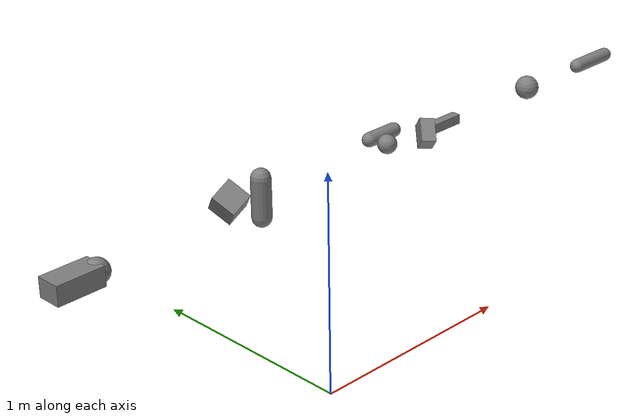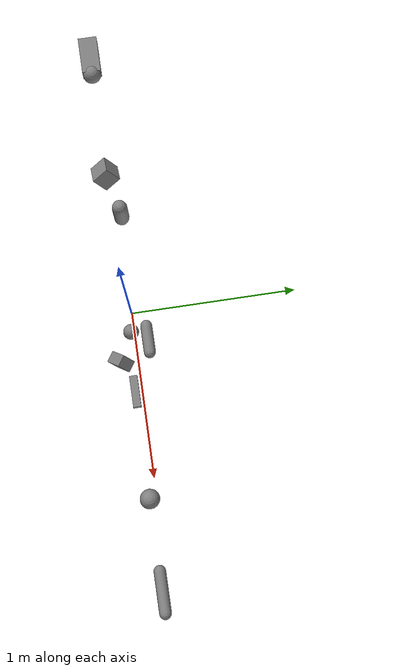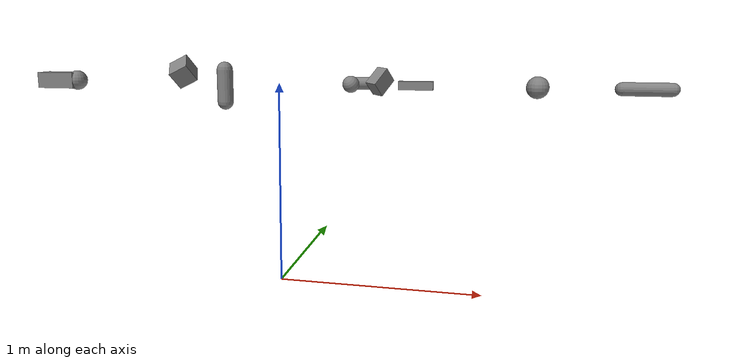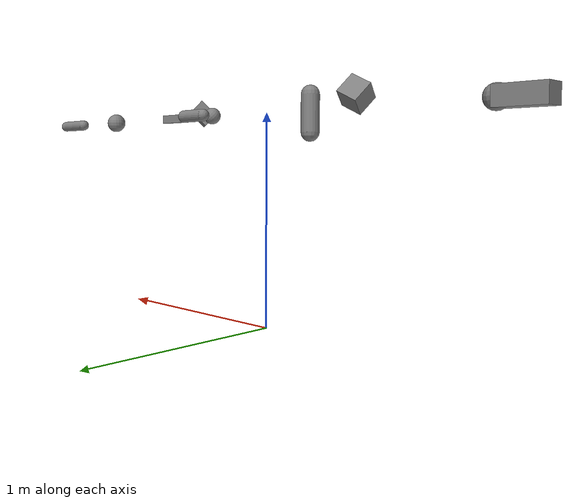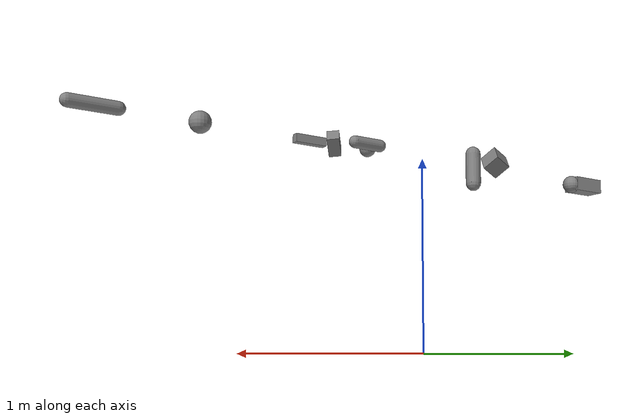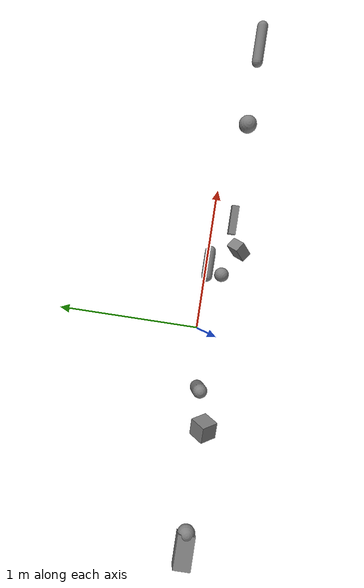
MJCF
<mujoco model="contact_sameframe">
  <option gravity="0 0 -9.81" timestep="0.002"/>

  <worldbody>
    <body name="snap_pos" pos="-1.2 0 1">
      <freejoint name="f_snap_pos"/>
      <inertial pos="5e-7 -4e-7 3e-7" mass="1.3" diaginertia="0.01 0.02 0.03"/>
      <geom name="g_snap_pos_a" type="box" size="0.1 0.05 0.04"/>
      <geom name="g_snap_pos_b" type="sphere" size="0.05" pos="0.1 0 0"/>
    </body>

    <body name="snap_rot" pos="-0.4 0 1">
      <freejoint name="f_snap_rot"/>
      <inertial pos="0.1 0.05 -0.02" quat="1 1e-7 -2e-7 0" mass="0.9" diaginertia="0.02 0.03 0.04"/>
      <geom name="g_snap_rot_a" type="capsule" size="0.04 0.08" pos="0.1 0.05 -0.02" quat="1 1e-7 -2e-7 0"/>
      <geom name="g_snap_rot_b" type="box" size="0.05 0.05 0.05" pos="-0.1 0 0.05" quat="0.9 0.3 -0.2 0.1"/>
    </body>

    <body name="general" pos="0.4 0 1">
      <freejoint name="f_general"/>
      <inertial pos="0.1 -0.05 0.02" quat="0.8 0.2 -0.3 0.4" mass="1.1" diaginertia="0.01 0.02 0.03"/>
      <geom name="g_general_inertia" type="box" size="0.05 0.03 0.04" pos="0.1 -0.05 0.02" quat="0.8 0.2 -0.3 0.4"/>
      <geom name="g_general_inertiarot" type="sphere" size="0.04" pos="-0.05 0.02 0" quat="0.8 0.2 -0.3 0.4"/>
      <geom name="g_general_none" type="capsule" size="0.03 0.07" pos="0 0.1 0" quat="0.5 0.5 0.5 0.5"/>
      <body name="child" pos="0.2 0 0">
        <joint name="h_child" type="hinge" axis="0 1 0" pos="0 0 0"/>
        <inertial pos="-6e-7 2e-7 0" mass="0.5" diaginertia="0.004 0.005 0.006"/>
        <geom name="g_child" type="box" size="0.08 0.02 0.02" pos="0.06 0 0"/>
      </body>
    </body>

    <body name="slider" pos="1.2 0 1">
      <joint name="s_slider" type="slide" axis="1 0 0"/>
      <inertial pos="5e-7 0 0" mass="0.7" diaginertia="0.002 0.002 0.002"/>
      <geom name="g_slider" type="sphere" size="0.05"/>
    </body>

    <body name="hinger" pos="1.6 0 1">
      <joint name="h_hinger" type="hinge" axis="0 0 1"/>
      <inertial pos="0 6e-7 0" quat="1 0 0 5e-7" mass="0.6" diaginertia="0.003 0.004 0.005"/>
      <geom name="g_hinger" type="capsule" size="0.03 0.1" pos="0.05 0 0" quat="0.7071067811865476 0 0.7071067811865476 0"/>
    </body>
  </worldbody>
</mujoco>
